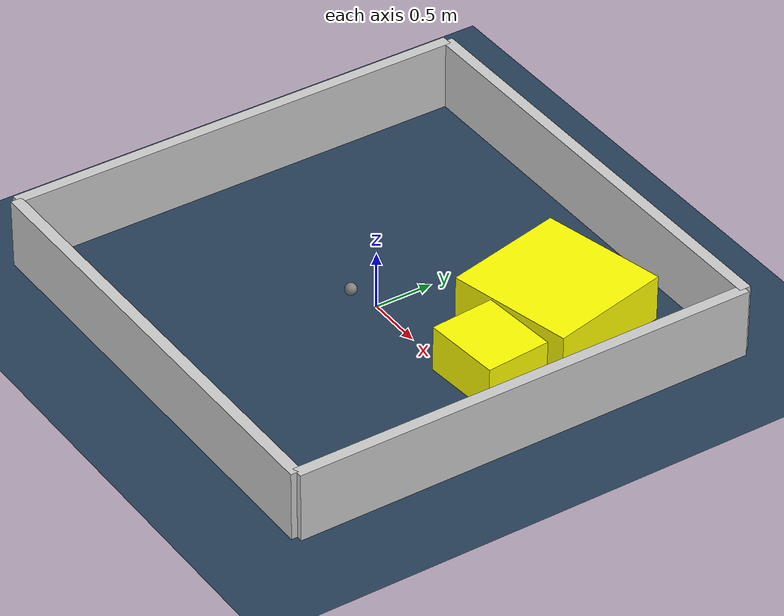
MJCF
<?xml version="1.0" ?>
<mujoco model="generated_environment">
  <option timestep="0.01" integrator="RK4" cone="elliptic"/>
  <default>
    <geom density="1"/>
  </default>
  <asset>
    <texture builtin="gradient" height="3072" rgb1="0.3 0.5 0.7" rgb2="0 0 0" type="skybox" width="512"/>
    <texture builtin="checker" height="300" mark="edge" markrgb="0.8 0.8 0.8" name="groundplane" rgb1="0.2 0.3 0.4" rgb2="0.1 0.2 0.3" type="2d" width="300"/>
    <material name="groundplane" reflectance="0.2" texrepeat="5 5" texture="groundplane" texuniform="true"/>
    <material name="robot" rgba="0.0 1.0 0.0 1"/>
  </asset>
  <worldbody>
    <light dir="0 0 -1" directional="true" pos="0 0 1.5"/>
    <geom condim="4" friction="1.0 0.005 0.001" material="groundplane" name="floor" size="0 0 0.05" type="plane"/>
    <body name="walls">
      <geom name="wall_1" condim="4" pos="-2.0 0.0 0.3" rgba="0.800000011920929 0.800000011920929 0.800000011920929 1.0" size="0.05 2.0 0.3" type="box"/>
      <geom name="wall_2" condim="4" pos="2.0 0.0 0.3" rgba="0.800000011920929 0.800000011920929 0.800000011920929 1.0" size="0.05 2.0 0.3" type="box"/>
      <geom name="wall_3" condim="4" pos="0.0 -2.0 0.3" rgba="0.800000011920929 0.800000011920929 0.800000011920929 1.0" size="2.0 0.05 0.3" type="box"/>
      <geom name="wall_4" condim="4" pos="0.0 2.0 0.3" rgba="0.800000011920929 0.800000011920929 0.800000011920929 1.0" size="2.0 0.05 0.3" type="box"/>
    </body>
    <body name="robot">
      <joint name="joint_x" type="slide" pos="0 0 0" axis="1 0 0"/>
      <joint name="joint_y" type="slide" pos="0 0 0" axis="0 1 0"/>
      <geom name="robot" type="sphere" pos="-0.07330839583359716 -0.18539480525405083 0.2" size="0.05" mass="5." friction="1.0 0.005 0.0001" condim="4"/>
      <site name="sensor_ball"/>
    </body>
    <body name="obstacle_1_movable">
      <geom name="obstacle_1_movable" condim="4" pos="0.8876945151808446 1.0575881361991177 0.2" euler="0 0 282.86252061030126" friction="1.0 0.005 0.001" rgba="1 1 0 1" size="0.5378878601540709 0.552215864749337 0.2" type="box" mass="0.1"/>
      <joint type="free"/>
    </body>
    <body name="obstacle_2_movable">
      <geom name="obstacle_2_movable" condim="4" pos="1.2049754281273932 0.2260447187375092 0.2" euler="0 0 184.69017596733306" friction="1.0 0.005 0.001" rgba="1 1 0 1" size="0.3367021753103595 0.2799490971791659 0.2" type="box" mass="0.1"/>
      <joint type="free"/>
    </body>
  </worldbody>
  <actuator>
    <motor name="actuator_x" joint="joint_x" gear="1" ctrlrange="-1 1"/>
    <motor name="actuator_y" joint="joint_y" gear="1" ctrlrange="-1 1"/>
  </actuator>
</mujoco>
